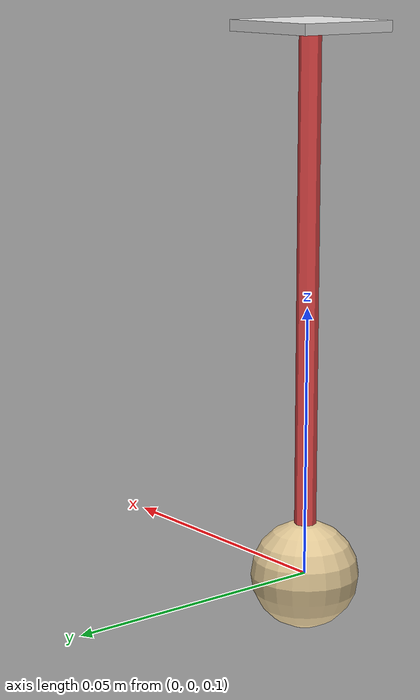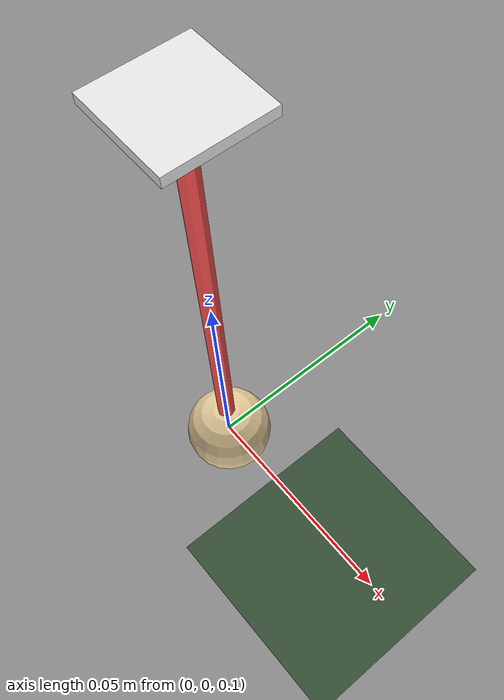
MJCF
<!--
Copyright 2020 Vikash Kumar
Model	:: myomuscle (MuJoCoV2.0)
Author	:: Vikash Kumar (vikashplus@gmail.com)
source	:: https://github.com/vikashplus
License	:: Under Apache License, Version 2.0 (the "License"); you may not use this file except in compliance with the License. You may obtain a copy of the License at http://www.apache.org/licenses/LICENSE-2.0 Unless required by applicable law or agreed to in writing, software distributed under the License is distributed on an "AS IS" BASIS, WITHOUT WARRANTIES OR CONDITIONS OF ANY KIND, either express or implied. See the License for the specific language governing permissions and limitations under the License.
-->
<mujoco model="tendon-finger">
<compiler meshdir="F:/--CodeRepo/--CodeRepo/Research/___Mujoco/mujoco/mujoco/icse27/mujoco_rl_fuzz_2.0/.cache/repos/myosuite/myosuite/simhive/myo_sim/basic" texturedir="F:/--CodeRepo/--CodeRepo/Research/___Mujoco/mujoco/mujoco/icse27/mujoco_rl_fuzz_2.0/.cache/repos/myosuite/myosuite/simhive/myo_sim/basic" assetdir="F:/--CodeRepo/--CodeRepo/Research/___Mujoco/mujoco/mujoco/icse27/mujoco_rl_fuzz_2.0/.cache/repos/myosuite/myosuite/simhive/myo_sim/basic"/>

	<default>
		<geom rgba=".9 .8 .6 1" size="0.01"/>
		<site type="sphere" rgba=".9 .9 .9 1" size="0.005"/>

		<default class="muscle">
			<muscle timeconst="0.01 0.04" range="0.75 1.05" scale="25" lmin="0.5" lmax="1.6" vmax="1.5" fpmax="1.3" fvmax="1.2"/>
		</default>

	</default>

	<visual>
		<headlight diffuse=".9 .9 .9"/>
	</visual>

	<worldbody>
		<geom type="plane" size="1 1 1" rgba=".2 .3 .2 1" pos="0 0 0"/>
		<site name="hook" pos="0 0 .200" type="box" size=".01 .01 .001"/>

		<body name="load" pos="0 0 .100">
			<geom type="sphere" size="0.01" mass="1" pos="0 0 0"/>
			<site name="load"/>
			<joint type="slide" axis="0 0 1" damping="0.01"/>
		</body>
	</worldbody>

	<tendon>
		<spatial name="tendon" width="0.002" rgba=".95 .3 .3 1" limited="true" range="0.075 0.105">
			<site site="hook"/>
			<site site="load"/>
		</spatial>
	</tendon>

	<actuator>
		<muscle name="muscle" tendon="tendon" ctrllimited="true" ctrlrange="0 1" class="muscle"/>
	</actuator>

</mujoco>
